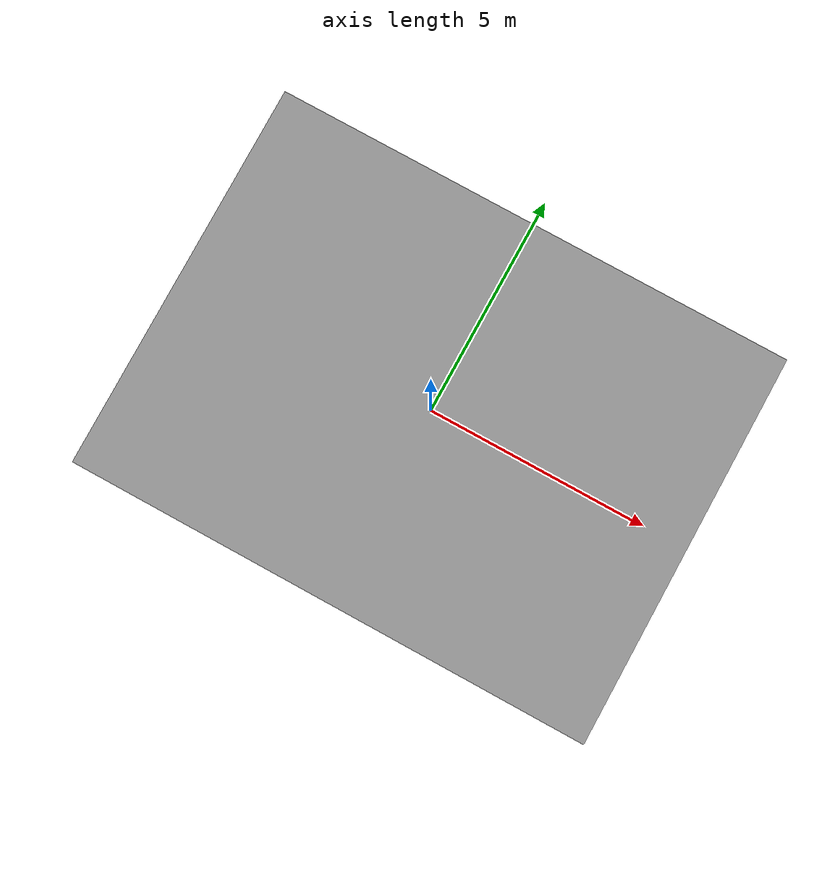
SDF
<?xml version="1.0" ?>

<sdf version="1.5">
  <model name="rgiro_demo_floor_outside">
    <static>1</static>
    <link name="link">
      <visual name="visual">
        <geometry>
          <box>
            <size>12 9 0.002</size>
          </box>
        </geometry>
        <material>
          <script>
            <uri>file://media/materials/scripts/gazebo.material</uri>
            <name>Gazebo/Grey</name>
          </script>
        </material>
      </visual>
      <collision name="collision">
        <geometry>
          <box>
            <size>12 9 0.002</size>
          </box>
        </geometry>
      </collision>
    </link>
  </model>
</sdf>
